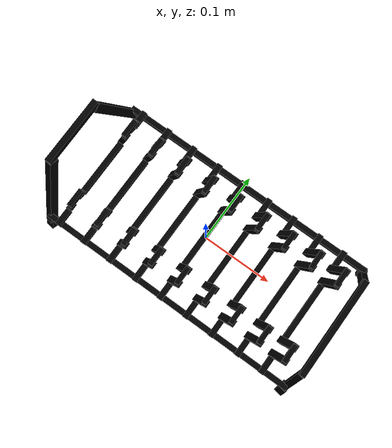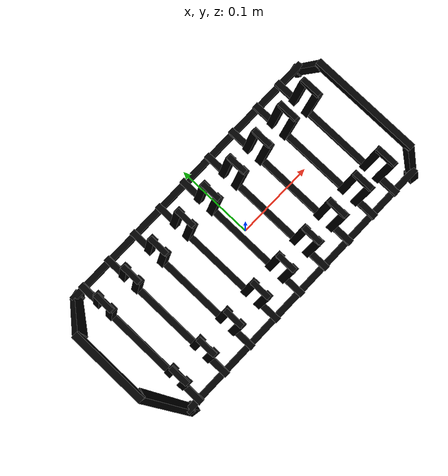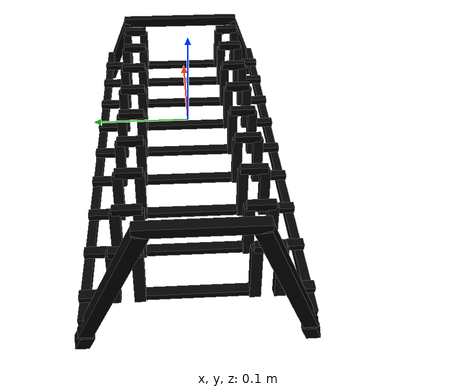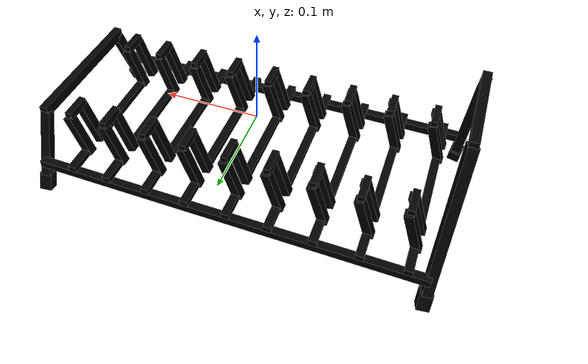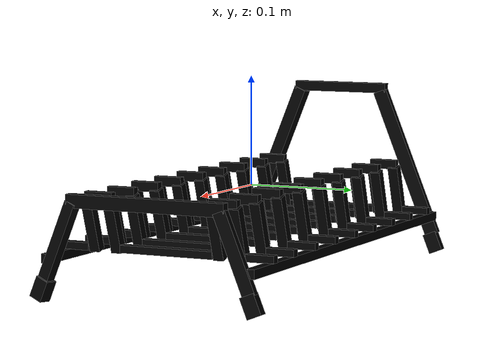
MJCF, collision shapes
<mujoco model="model">
  <option timestep="0.002" gravity="0.0 0.0 -9.81" />
  <compiler angle="radian" />
  <asset>
    <mesh file="visual/DishRack030.obj" name="DishRack030_vis" scale="0.8 0.8 0.8" />
    <texture file="visual/T_BC001.png" name="DishRack030_material" type="2d" />
    <material name="DishRack030_material" rgba="1 1 1 1.0" texture="DishRack030_material" shininess="0.4472135901451111" specular="0.3103448502657381" />
  </asset>
  <default>
    <default class="visual">
      <geom conaffinity="0" contype="0" group="2" type="mesh" density="0" />
    </default>
    <default class="collision">
      <geom group="3" rgba="1 1 1 0.25" density="0" solref="0.004 1" solimp="0.998 0.998 0.001" friction="0.5" />
    </default>
    <default class="spawn">
      <geom group="0" rgba="1 1 1 0.5" contype="0" conaffinity="0" />
      <site group="0" rgba="1 1 1 0.5" />
    </default>
    <default class="region">
      <geom group="1" conaffinity="0" contype="0" rgba="0 1 0 0" mass="0" />
    </default>
  </default>
  <worldbody>
    <body>
      <body name="object">
        <geom mesh="DishRack030_vis" type="mesh" class="visual" material="DishRack030_material" group="2" contype="0" conaffinity="0" density="0" mass="0.5" />
        <geom type="box" pos="-0.20302856 0.10015124 -0.073187224" size="0.00633350983262 0.0063881650567 0.00959458276632" quat="0.9781383872032166 0.19029957056045532 -0.01601365953683853 0.0823102816939354" class="collision" group="3" rgba="0 0 0 0" density="0" friction="0.5" solref="0.004 1" solimp="0.998 0.998 0.001" />
        <geom type="box" pos="-0.203377744 0.0709088 0.004020824" size="0.00478751286864 0.00641122236848 0.0749001324177" quat="0.9781383872032166 0.19029957056045532 -0.01601365953683853 0.0823102816939354" class="collision" group="3" rgba="0 0 0 0" density="0" friction="0.5" solref="0.004 1" solimp="0.998 0.998 0.001" />
        <geom type="box" pos="-0.203478216 0.000433736 0.076687624" size="0.00413835085928 0.0482719957829 0.00470789186657" quat="1.0 0.0 0.0 0.0" class="collision" group="3" rgba="0 0 0 0" density="0" friction="0.5" solref="0.004 1" solimp="0.998 0.998 0.001" />
        <geom type="box" pos="-1.3352e-05 0.097973272 -0.047118064" size="0.203974056243 0.00413835458458 0.00415748246014" quat="1.0 0.0 0.0 0.0" class="collision" group="3" rgba="0 0 0 0" density="0" friction="0.5" solref="0.004 1" solimp="0.998 0.998 0.001" />
        <geom type="box" pos="-0.18276036 0.089201648 -0.039936072" size="0.00413835085928 0.0131615892053 0.00329902209342" quat="1.0 0.0 0.0 0.0" class="collision" group="3" rgba="0 0 0 0" density="0" friction="0.5" solref="0.004 1" solimp="0.998 0.998 0.001" />
        <geom type="box" pos="-0.18276036 0.000391304 -0.040008736" size="0.00413835085928 0.0443565487862 0.00337168164551" quat="1.0 0.0 0.0 0.0" class="collision" group="3" rgba="0 0 0 0" density="0" friction="0.5" solref="0.004 1" solimp="0.998 0.998 0.001" />
        <geom type="box" pos="-0.17148676 0.060177736 0.005273304" size="0.00339950844646 0.0133820787072 0.00438583120704" quat="1.0 0.0 0.0 0.0" class="collision" group="3" rgba="0 0 0 0" density="0" friction="0.5" solref="0.004 1" solimp="0.998 0.998 0.001" />
        <geom type="box" pos="-0.177669168 0.071078832 -0.019919648" size="0.00430568195879 0.00487963669002 0.0244384646416" quat="0.9872633218765259 0.0 0.1590948849916458 0.0" class="collision" group="3" rgba="0 0 0 0" density="0" friction="0.5" solref="0.004 1" solimp="0.998 0.998 0.001" />
        <geom type="box" pos="-1.3352e-05 -0.09664712 -0.047118064" size="0.203974056243 0.00413835458458 0.00415748246014" quat="1.0 0.0 0.0 0.0" class="collision" group="3" rgba="0 0 0 0" density="0" friction="0.5" solref="0.004 1" solimp="0.998 0.998 0.001" />
        <geom type="box" pos="-0.177669168 0.049713016 -0.019919648" size="0.00430568195879 0.00487963669002 0.0244384646416" quat="0.9872633218765259 0.0 0.1590948849916458 0.0" class="collision" group="3" rgba="0 0 0 0" density="0" friction="0.5" solref="0.004 1" solimp="0.998 0.998 0.001" />
        <geom type="box" pos="-0.203377744 -0.07025748 0.004020824" size="0.00478751286864 0.00641122236848 0.0749001324177" quat="0.9781383872032166 -0.19029957056045532 -0.016013650223612785 -0.0823102742433548" class="collision" group="3" rgba="0 0 0 0" density="0" friction="0.5" solref="0.004 1" solimp="0.998 0.998 0.001" />
        <geom type="box" pos="-0.20302856 -0.099499928 -0.073187224" size="0.00633350983262 0.0063881650567 0.00959458276632" quat="0.9781383872032166 -0.19029955565929413 -0.016013650223612785 -0.0823102816939354" class="collision" group="3" rgba="0 0 0 0" density="0" friction="0.5" solref="0.004 1" solimp="0.998 0.998 0.001" />
        <geom type="box" pos="0.203668096 -0.099499928 -0.073187224" size="0.00633350983262 0.0063881650567 0.00959458276632" quat="0.9781383872032166 -0.19029955565929413 -0.016013650223612785 -0.0823102816939354" class="collision" group="3" rgba="0 0 0 0" density="0" friction="0.5" solref="0.004 1" solimp="0.998 0.998 0.001" />
        <geom type="box" pos="0.20331888 -0.083474624 -0.031531936" size="0.00460766814649 0.00535018630326 0.0369853049517" quat="0.9781383872032166 -0.19029957056045532 -0.016013650223612785 -0.0823102742433548" class="collision" group="3" rgba="0 0 0 0" density="0" friction="0.5" solref="0.004 1" solimp="0.998 0.998 0.001" />
        <geom type="box" pos="0.203218416 0.000674272 0.00440112" size="0.00413835085928 0.0749468147754 0.00588886328042" quat="1.0 0.0 0.0 0.0" class="collision" group="3" rgba="0 0 0 0" density="0" friction="0.5" solref="0.004 1" solimp="0.998 0.998 0.001" />
        <geom type="box" pos="0.20331888 0.08436648 -0.031531944" size="0.00464493408799 0.00557004772127 0.0368951171637" quat="0.9781383872032166 0.19029957056045532 -0.01601365953683853 0.0823102816939354" class="collision" group="3" rgba="0 0 0 0" density="0" friction="0.5" solref="0.004 1" solimp="0.998 0.998 0.001" />
        <geom type="box" pos="0.203668096 0.10015124 -0.073187224" size="0.00633350983262 0.0063881650567 0.00959458276632" quat="0.9781383872032166 0.19029957056045532 -0.01601365953683853 0.0823102816939354" class="collision" group="3" rgba="0 0 0 0" density="0" friction="0.5" solref="0.004 1" solimp="0.998 0.998 0.001" />
        <geom type="box" pos="-0.177669168 -0.048886232 -0.019919648" size="0.00430568195879 0.00487963669002 0.0244384646416" quat="0.9872633218765259 0.0 0.1590948849916458 0.0" class="collision" group="3" rgba="0 0 0 0" density="0" friction="0.5" solref="0.004 1" solimp="0.998 0.998 0.001" />
        <geom type="box" pos="-0.177669168 -0.070252048 -0.019919648" size="0.00430568195879 0.00487963669002 0.0244384646416" quat="0.9872633218765259 0.0 0.1590948849916458 0.0" class="collision" group="3" rgba="0 0 0 0" density="0" friction="0.5" solref="0.004 1" solimp="0.998 0.998 0.001" />
        <geom type="box" pos="-0.17148676 -0.059350944 0.005273304" size="0.00339950844646 0.0133820787072 0.00438583120704" quat="1.0 0.0 0.0 0.0" class="collision" group="3" rgba="0 0 0 0" density="0" friction="0.5" solref="0.004 1" solimp="0.998 0.998 0.001" />
        <geom type="box" pos="-0.18276036 -0.088374856 -0.039936072" size="0.00413835085928 0.0131615892053 0.00329902209342" quat="1.0 0.0 0.0 0.0" class="collision" group="3" rgba="0 0 0 0" density="0" friction="0.5" solref="0.004 1" solimp="0.998 0.998 0.001" />
        <geom type="box" pos="-0.138210296 -0.088374856 -0.039936072" size="0.00413835085928 0.0131615892053 0.00329902209342" quat="1.0 0.0 0.0 0.0" class="collision" group="3" rgba="0 0 0 0" density="0" friction="0.5" solref="0.004 1" solimp="0.998 0.998 0.001" />
        <geom type="box" pos="-0.126936696 -0.059350944 0.005273304" size="0.00339950844646 0.0133820787072 0.00438583120704" quat="1.0 0.0 0.0 0.0" class="collision" group="3" rgba="0 0 0 0" density="0" friction="0.5" solref="0.004 1" solimp="0.998 0.998 0.001" />
        <geom type="box" pos="-0.133119104 -0.070252048 -0.019919648" size="0.00430568195879 0.00487963669002 0.0244384646416" quat="0.9872633218765259 0.0 0.1590948849916458 0.0" class="collision" group="3" rgba="0 0 0 0" density="0" friction="0.5" solref="0.004 1" solimp="0.998 0.998 0.001" />
        <geom type="box" pos="-0.133119104 -0.048886232 -0.019919648" size="0.00430568195879 0.00487963669002 0.0244384646416" quat="0.9872633218765259 0.0 0.1590948849916458 0.0" class="collision" group="3" rgba="0 0 0 0" density="0" friction="0.5" solref="0.004 1" solimp="0.998 0.998 0.001" />
        <geom type="box" pos="-0.133119104 0.049713016 -0.019919648" size="0.00430568195879 0.00487963669002 0.0244384646416" quat="0.9872633218765259 0.0 0.1590948849916458 0.0" class="collision" group="3" rgba="0 0 0 0" density="0" friction="0.5" solref="0.004 1" solimp="0.998 0.998 0.001" />
        <geom type="box" pos="-0.133119104 0.071078832 -0.019919648" size="0.00430568195879 0.00487963669002 0.0244384646416" quat="0.9872633218765259 0.0 0.1590948849916458 0.0" class="collision" group="3" rgba="0 0 0 0" density="0" friction="0.5" solref="0.004 1" solimp="0.998 0.998 0.001" />
        <geom type="box" pos="-0.126936696 0.060177736 0.005273304" size="0.00339950844646 0.0133820787072 0.00438583120704" quat="1.0 0.0 0.0 0.0" class="collision" group="3" rgba="0 0 0 0" density="0" friction="0.5" solref="0.004 1" solimp="0.998 0.998 0.001" />
        <geom type="box" pos="-0.138210296 0.000391304 -0.040008736" size="0.00413835085928 0.0443565487862 0.00337168164551" quat="1.0 0.0 0.0 0.0" class="collision" group="3" rgba="0 0 0 0" density="0" friction="0.5" solref="0.004 1" solimp="0.998 0.998 0.001" />
        <geom type="box" pos="-0.138210296 0.089201648 -0.039936072" size="0.00413835085928 0.0131615892053 0.00329902209342" quat="1.0 0.0 0.0 0.0" class="collision" group="3" rgba="0 0 0 0" density="0" friction="0.5" solref="0.004 1" solimp="0.998 0.998 0.001" />
        <geom type="box" pos="-0.049090392 0.089201648 -0.039936072" size="0.00413835085928 0.0131615892053 0.00329902209342" quat="1.0 0.0 0.0 0.0" class="collision" group="3" rgba="0 0 0 0" density="0" friction="0.5" solref="0.004 1" solimp="0.998 0.998 0.001" />
        <geom type="box" pos="-0.0490904 0.000391304 -0.040008736" size="0.00413835085928 0.0443565487862 0.00337168164551" quat="1.0 0.0 0.0 0.0" class="collision" group="3" rgba="0 0 0 0" density="0" friction="0.5" solref="0.004 1" solimp="0.998 0.998 0.001" />
        <geom type="box" pos="-0.037816784 0.060177736 0.005273304" size="0.00339950844646 0.0133820787072 0.00438583120704" quat="1.0 0.0 0.0 0.0" class="collision" group="3" rgba="0 0 0 0" density="0" friction="0.5" solref="0.004 1" solimp="0.998 0.998 0.001" />
        <geom type="box" pos="-0.043999208 0.071078832 -0.019919648" size="0.00430568195879 0.00487963669002 0.0244384646416" quat="0.9872633218765259 0.0 0.1590948849916458 0.0" class="collision" group="3" rgba="0 0 0 0" density="0" friction="0.5" solref="0.004 1" solimp="0.998 0.998 0.001" />
        <geom type="box" pos="-0.043999208 0.049713016 -0.019919648" size="0.00430568195879 0.00487963669002 0.0244384646416" quat="0.9872633218765259 0.0 0.1590948849916458 0.0" class="collision" group="3" rgba="0 0 0 0" density="0" friction="0.5" solref="0.004 1" solimp="0.998 0.998 0.001" />
        <geom type="box" pos="-0.043999208 -0.048886232 -0.019919648" size="0.00430568195879 0.00487963669002 0.0244384646416" quat="0.9872633218765259 0.0 0.1590948849916458 0.0" class="collision" group="3" rgba="0 0 0 0" density="0" friction="0.5" solref="0.004 1" solimp="0.998 0.998 0.001" />
        <geom type="box" pos="-0.043999208 -0.070252048 -0.019919648" size="0.00430568195879 0.00487963669002 0.0244384646416" quat="0.9872633218765259 0.0 0.1590948849916458 0.0" class="collision" group="3" rgba="0 0 0 0" density="0" friction="0.5" solref="0.004 1" solimp="0.998 0.998 0.001" />
        <geom type="box" pos="-0.037816784 -0.059350944 0.005273304" size="0.00339950844646 0.0133820787072 0.00438583120704" quat="1.0 0.0 0.0 0.0" class="collision" group="3" rgba="0 0 0 0" density="0" friction="0.5" solref="0.004 1" solimp="0.998 0.998 0.001" />
        <geom type="box" pos="-0.049090392 -0.088374856 -0.039936072" size="0.00413835085928 0.0131615892053 0.00329902209342" quat="1.0 0.0 0.0 0.0" class="collision" group="3" rgba="0 0 0 0" density="0" friction="0.5" solref="0.004 1" solimp="0.998 0.998 0.001" />
        <geom type="box" pos="-0.093640456 -0.088374856 -0.039936072" size="0.00413835085928 0.0131615892053 0.00329902209342" quat="1.0 0.0 0.0 0.0" class="collision" group="3" rgba="0 0 0 0" density="0" friction="0.5" solref="0.004 1" solimp="0.998 0.998 0.001" />
        <geom type="box" pos="-0.082366848 -0.059350944 0.005273304" size="0.00339950844646 0.0133820787072 0.00438583120704" quat="1.0 0.0 0.0 0.0" class="collision" group="3" rgba="0 0 0 0" density="0" friction="0.5" solref="0.004 1" solimp="0.998 0.998 0.001" />
        <geom type="box" pos="-0.088549272 -0.070252048 -0.019919648" size="0.00430568195879 0.00487963669002 0.0244384646416" quat="0.9872633218765259 0.0 0.1590948849916458 0.0" class="collision" group="3" rgba="0 0 0 0" density="0" friction="0.5" solref="0.004 1" solimp="0.998 0.998 0.001" />
        <geom type="box" pos="-0.088549272 -0.048886232 -0.019919648" size="0.00430568195879 0.00487963669002 0.0244384646416" quat="0.9872633218765259 0.0 0.1590948849916458 0.0" class="collision" group="3" rgba="0 0 0 0" density="0" friction="0.5" solref="0.004 1" solimp="0.998 0.998 0.001" />
        <geom type="box" pos="-0.088549272 0.049713016 -0.019919648" size="0.00430568195879 0.00487963669002 0.0244384646416" quat="0.9872633218765259 0.0 0.1590948849916458 0.0" class="collision" group="3" rgba="0 0 0 0" density="0" friction="0.5" solref="0.004 1" solimp="0.998 0.998 0.001" />
        <geom type="box" pos="-0.088549272 0.071078832 -0.019919648" size="0.00430568195879 0.00487963669002 0.0244384646416" quat="0.9872633218765259 0.0 0.1590948849916458 0.0" class="collision" group="3" rgba="0 0 0 0" density="0" friction="0.5" solref="0.004 1" solimp="0.998 0.998 0.001" />
        <geom type="box" pos="-0.082366848 0.060177736 0.005273304" size="0.00339950844646 0.0133820787072 0.00438583120704" quat="1.0 0.0 0.0 0.0" class="collision" group="3" rgba="0 0 0 0" density="0" friction="0.5" solref="0.004 1" solimp="0.998 0.998 0.001" />
        <geom type="box" pos="-0.093640456 0.000391304 -0.040008736" size="0.00413835085928 0.0443565487862 0.00337168164551" quat="1.0 0.0 0.0 0.0" class="collision" group="3" rgba="0 0 0 0" density="0" friction="0.5" solref="0.004 1" solimp="0.998 0.998 0.001" />
        <geom type="box" pos="-0.093640456 0.089201648 -0.039936072" size="0.00413835085928 0.0131615892053 0.00329902209342" quat="1.0 0.0 0.0 0.0" class="collision" group="3" rgba="0 0 0 0" density="0" friction="0.5" solref="0.004 1" solimp="0.998 0.998 0.001" />
        <geom type="box" pos="0.037448528 0.089201648 -0.039936072" size="0.00413835085928 0.0131615892053 0.00329902209342" quat="1.0 0.0 0.0 0.0" class="collision" group="3" rgba="0 0 0 0" density="0" friction="0.5" solref="0.004 1" solimp="0.998 0.998 0.001" />
        <geom type="box" pos="0.037448528 0.000391304 -0.040008736" size="0.00413835085928 0.0443565487862 0.00337168164551" quat="1.0 0.0 0.0 0.0" class="collision" group="3" rgba="0 0 0 0" density="0" friction="0.5" solref="0.004 1" solimp="0.998 0.998 0.001" />
        <geom type="box" pos="0.048722136 0.060177736 0.005273304" size="0.00339950844646 0.0133820787072 0.00438583120704" quat="1.0 0.0 0.0 0.0" class="collision" group="3" rgba="0 0 0 0" density="0" friction="0.5" solref="0.004 1" solimp="0.998 0.998 0.001" />
        <geom type="box" pos="0.04253972 0.071078832 -0.019919648" size="0.00430568195879 0.00487963669002 0.0244384646416" quat="0.9872633218765259 0.0 0.1590948849916458 0.0" class="collision" group="3" rgba="0 0 0 0" density="0" friction="0.5" solref="0.004 1" solimp="0.998 0.998 0.001" />
        <geom type="box" pos="0.04253972 0.049713016 -0.019919648" size="0.00430568195879 0.00487963669002 0.0244384646416" quat="0.9872633218765259 0.0 0.1590948849916458 0.0" class="collision" group="3" rgba="0 0 0 0" density="0" friction="0.5" solref="0.004 1" solimp="0.998 0.998 0.001" />
        <geom type="box" pos="0.04253972 -0.048886232 -0.019919648" size="0.00430568195879 0.00487963669002 0.0244384646416" quat="0.9872633218765259 0.0 0.1590948849916458 0.0" class="collision" group="3" rgba="0 0 0 0" density="0" friction="0.5" solref="0.004 1" solimp="0.998 0.998 0.001" />
        <geom type="box" pos="0.04253972 -0.070252048 -0.019919648" size="0.00430568195879 0.00487963669002 0.0244384646416" quat="0.9872633218765259 0.0 0.1590948849916458 0.0" class="collision" group="3" rgba="0 0 0 0" density="0" friction="0.5" solref="0.004 1" solimp="0.998 0.998 0.001" />
        <geom type="box" pos="0.048722136 -0.059350944 0.005273304" size="0.00339950844646 0.0133820787072 0.00438583120704" quat="1.0 0.0 0.0 0.0" class="collision" group="3" rgba="0 0 0 0" density="0" friction="0.5" solref="0.004 1" solimp="0.998 0.998 0.001" />
        <geom type="box" pos="0.037448528 -0.088374856 -0.039936072" size="0.00413835085928 0.0131615892053 0.00329902209342" quat="1.0 0.0 0.0 0.0" class="collision" group="3" rgba="0 0 0 0" density="0" friction="0.5" solref="0.004 1" solimp="0.998 0.998 0.001" />
        <geom type="box" pos="-0.006274512 -0.088374856 -0.039936072" size="0.00413835085928 0.0131615892053 0.00329902209342" quat="1.0 0.0 0.0 0.0" class="collision" group="3" rgba="0 0 0 0" density="0" friction="0.5" solref="0.004 1" solimp="0.998 0.998 0.001" />
        <geom type="box" pos="0.004999096 -0.059350944 0.005273304" size="0.00339950844646 0.0133820787072 0.00438583120704" quat="1.0 0.0 0.0 0.0" class="collision" group="3" rgba="0 0 0 0" density="0" friction="0.5" solref="0.004 1" solimp="0.998 0.998 0.001" />
        <geom type="box" pos="-0.00118332 -0.070252048 -0.019919648" size="0.00430568195879 0.00487963669002 0.0244384646416" quat="0.9872633218765259 0.0 0.1590948849916458 0.0" class="collision" group="3" rgba="0 0 0 0" density="0" friction="0.5" solref="0.004 1" solimp="0.998 0.998 0.001" />
        <geom type="box" pos="-0.00118332 -0.048886232 -0.019919648" size="0.00430568195879 0.00487963669002 0.0244384646416" quat="0.9872633218765259 0.0 0.1590948849916458 0.0" class="collision" group="3" rgba="0 0 0 0" density="0" friction="0.5" solref="0.004 1" solimp="0.998 0.998 0.001" />
        <geom type="box" pos="-0.00118332 0.049713016 -0.019919648" size="0.00430568195879 0.00487963669002 0.0244384646416" quat="0.9872633218765259 0.0 0.1590948849916458 0.0" class="collision" group="3" rgba="0 0 0 0" density="0" friction="0.5" solref="0.004 1" solimp="0.998 0.998 0.001" />
        <geom type="box" pos="-0.00118332 0.071078832 -0.019919648" size="0.00430568195879 0.00487963669002 0.0244384646416" quat="0.9872633218765259 0.0 0.1590948849916458 0.0" class="collision" group="3" rgba="0 0 0 0" density="0" friction="0.5" solref="0.004 1" solimp="0.998 0.998 0.001" />
        <geom type="box" pos="0.004999096 0.060177736 0.005273304" size="0.00339950844646 0.0133820787072 0.00438583120704" quat="1.0 0.0 0.0 0.0" class="collision" group="3" rgba="0 0 0 0" density="0" friction="0.5" solref="0.004 1" solimp="0.998 0.998 0.001" />
        <geom type="box" pos="-0.006274512 0.000391304 -0.040008736" size="0.00413835085928 0.0443565487862 0.00337168164551" quat="1.0 0.0 0.0 0.0" class="collision" group="3" rgba="0 0 0 0" density="0" friction="0.5" solref="0.004 1" solimp="0.998 0.998 0.001" />
        <geom type="box" pos="-0.006274512 0.089201648 -0.039936072" size="0.00413835085928 0.0131615892053 0.00329902209342" quat="1.0 0.0 0.0 0.0" class="collision" group="3" rgba="0 0 0 0" density="0" friction="0.5" solref="0.004 1" solimp="0.998 0.998 0.001" />
        <geom type="box" pos="0.080395696 0.089201648 -0.039936072" size="0.00413835085928 0.0131615892053 0.00329902209342" quat="1.0 0.0 0.0 0.0" class="collision" group="3" rgba="0 0 0 0" density="0" friction="0.5" solref="0.004 1" solimp="0.998 0.998 0.001" />
        <geom type="box" pos="0.080395696 0.000391304 -0.040008736" size="0.00413835085928 0.0443565487862 0.00337168164551" quat="1.0 0.0 0.0 0.0" class="collision" group="3" rgba="0 0 0 0" density="0" friction="0.5" solref="0.004 1" solimp="0.998 0.998 0.001" />
        <geom type="box" pos="0.091669304 0.060177736 0.005273304" size="0.00339950844646 0.0133820787072 0.00438583120704" quat="1.0 0.0 0.0 0.0" class="collision" group="3" rgba="0 0 0 0" density="0" friction="0.5" solref="0.004 1" solimp="0.998 0.998 0.001" />
        <geom type="box" pos="0.08548688 0.071078832 -0.019919648" size="0.00430568195879 0.00487963669002 0.0244384646416" quat="0.9872633218765259 0.0 0.1590948849916458 0.0" class="collision" group="3" rgba="0 0 0 0" density="0" friction="0.5" solref="0.004 1" solimp="0.998 0.998 0.001" />
        <geom type="box" pos="0.08548688 0.049713016 -0.019919648" size="0.00430568195879 0.00487963669002 0.0244384646416" quat="0.9872633218765259 0.0 0.1590948849916458 0.0" class="collision" group="3" rgba="0 0 0 0" density="0" friction="0.5" solref="0.004 1" solimp="0.998 0.998 0.001" />
        <geom type="box" pos="0.08548688 -0.048886232 -0.019919648" size="0.00430568195879 0.00487963669002 0.0244384646416" quat="0.9872633218765259 0.0 0.1590948849916458 0.0" class="collision" group="3" rgba="0 0 0 0" density="0" friction="0.5" solref="0.004 1" solimp="0.998 0.998 0.001" />
        <geom type="box" pos="0.08548688 -0.070252048 -0.019919648" size="0.00430568195879 0.00487963669002 0.0244384646416" quat="0.9872633218765259 0.0 0.1590948849916458 0.0" class="collision" group="3" rgba="0 0 0 0" density="0" friction="0.5" solref="0.004 1" solimp="0.998 0.998 0.001" />
        <geom type="box" pos="0.091669304 -0.059350944 0.005273304" size="0.00339950844646 0.0133820787072 0.00438583120704" quat="1.0 0.0 0.0 0.0" class="collision" group="3" rgba="0 0 0 0" density="0" friction="0.5" solref="0.004 1" solimp="0.998 0.998 0.001" />
        <geom type="box" pos="0.080395696 -0.088374856 -0.039936072" size="0.00413835085928 0.0131615892053 0.00329902209342" quat="1.0 0.0 0.0 0.0" class="collision" group="3" rgba="0 0 0 0" density="0" friction="0.5" solref="0.004 1" solimp="0.998 0.998 0.001" />
        <geom type="box" pos="0.124178592 -0.088374856 -0.039936072" size="0.00413835085928 0.0131615892053 0.00329902209342" quat="1.0 0.0 0.0 0.0" class="collision" group="3" rgba="0 0 0 0" density="0" friction="0.5" solref="0.004 1" solimp="0.998 0.998 0.001" />
        <geom type="box" pos="0.135452184 -0.059350944 0.005273304" size="0.00339950844646 0.0133820787072 0.00438583120704" quat="1.0 0.0 0.0 0.0" class="collision" group="3" rgba="0 0 0 0" density="0" friction="0.5" solref="0.004 1" solimp="0.998 0.998 0.001" />
        <geom type="box" pos="0.129269776 -0.070252048 -0.019919648" size="0.00430568195879 0.00487963669002 0.0244384646416" quat="0.9872633218765259 0.0 0.1590948849916458 0.0" class="collision" group="3" rgba="0 0 0 0" density="0" friction="0.5" solref="0.004 1" solimp="0.998 0.998 0.001" />
        <geom type="box" pos="0.129269776 -0.048886232 -0.019919648" size="0.00430568195879 0.00487963669002 0.0244384646416" quat="0.9872633218765259 0.0 0.1590948849916458 0.0" class="collision" group="3" rgba="0 0 0 0" density="0" friction="0.5" solref="0.004 1" solimp="0.998 0.998 0.001" />
        <geom type="box" pos="0.129269776 0.049713016 -0.019919648" size="0.00430568195879 0.00487963669002 0.0244384646416" quat="0.9872633218765259 0.0 0.1590948849916458 0.0" class="collision" group="3" rgba="0 0 0 0" density="0" friction="0.5" solref="0.004 1" solimp="0.998 0.998 0.001" />
        <geom type="box" pos="0.129269776 0.071078832 -0.019919648" size="0.00430568195879 0.00487963669002 0.0244384646416" quat="0.9872633218765259 0.0 0.1590948849916458 0.0" class="collision" group="3" rgba="0 0 0 0" density="0" friction="0.5" solref="0.004 1" solimp="0.998 0.998 0.001" />
        <geom type="box" pos="0.135452184 0.060177736 0.005273304" size="0.00339950844646 0.0133820787072 0.00438583120704" quat="1.0 0.0 0.0 0.0" class="collision" group="3" rgba="0 0 0 0" density="0" friction="0.5" solref="0.004 1" solimp="0.998 0.998 0.001" />
        <geom type="box" pos="0.124178592 0.000391304 -0.040008736" size="0.00413835085928 0.0443565487862 0.00337168164551" quat="1.0 0.0 0.0 0.0" class="collision" group="3" rgba="0 0 0 0" density="0" friction="0.5" solref="0.004 1" solimp="0.998 0.998 0.001" />
        <geom type="box" pos="0.124178592 0.089201648 -0.039936072" size="0.00413835085928 0.0131615892053 0.00329902209342" quat="1.0 0.0 0.0 0.0" class="collision" group="3" rgba="0 0 0 0" density="0" friction="0.5" solref="0.004 1" solimp="0.998 0.998 0.001" />
        <geom type="box" pos="0.16388388 -0.088374856 -0.039936072" size="0.00413835085928 0.0131615892053 0.00329902209342" quat="1.0 0.0 0.0 0.0" class="collision" group="3" rgba="0 0 0 0" density="0" friction="0.5" solref="0.004 1" solimp="0.998 0.998 0.001" />
        <geom type="box" pos="0.175157472 -0.059350944 0.005273304" size="0.00339950844646 0.0133820787072 0.00438583120704" quat="1.0 0.0 0.0 0.0" class="collision" group="3" rgba="0 0 0 0" density="0" friction="0.5" solref="0.004 1" solimp="0.998 0.998 0.001" />
        <geom type="box" pos="0.168975064 -0.070252048 -0.019919648" size="0.00430568195879 0.00487963669002 0.0244384646416" quat="0.9872633218765259 0.0 0.1590948849916458 0.0" class="collision" group="3" rgba="0 0 0 0" density="0" friction="0.5" solref="0.004 1" solimp="0.998 0.998 0.001" />
        <geom type="box" pos="0.168975064 -0.048886232 -0.019919648" size="0.00430568195879 0.00487963669002 0.0244384646416" quat="0.9872633218765259 0.0 0.1590948849916458 0.0" class="collision" group="3" rgba="0 0 0 0" density="0" friction="0.5" solref="0.004 1" solimp="0.998 0.998 0.001" />
        <geom type="box" pos="0.168975064 0.049713016 -0.019919648" size="0.00430568195879 0.00487963669002 0.0244384646416" quat="0.9872633218765259 0.0 0.1590948849916458 0.0" class="collision" group="3" rgba="0 0 0 0" density="0" friction="0.5" solref="0.004 1" solimp="0.998 0.998 0.001" />
        <geom type="box" pos="0.168975064 0.071078832 -0.019919648" size="0.00430568195879 0.00487963669002 0.0244384646416" quat="0.9872633218765259 0.0 0.1590948849916458 0.0" class="collision" group="3" rgba="0 0 0 0" density="0" friction="0.5" solref="0.004 1" solimp="0.998 0.998 0.001" />
        <geom type="box" pos="0.175157472 0.060177736 0.005273304" size="0.00339950844646 0.0133820787072 0.00438583120704" quat="1.0 0.0 0.0 0.0" class="collision" group="3" rgba="0 0 0 0" density="0" friction="0.5" solref="0.004 1" solimp="0.998 0.998 0.001" />
        <geom type="box" pos="0.16388388 0.000391304 -0.040008736" size="0.00413835085928 0.0443565487862 0.00337168164551" quat="1.0 0.0 0.0 0.0" class="collision" group="3" rgba="0 0 0 0" density="0" friction="0.5" solref="0.004 1" solimp="0.998 0.998 0.001" />
        <geom type="box" pos="0.16388388 0.089201648 -0.039936072" size="0.00413835085928 0.0131615892053 0.00329902209342" quat="1.0 0.0 0.0 0.0" class="collision" group="3" rgba="0 0 0 0" density="0" friction="0.5" solref="0.004 1" solimp="0.998 0.998 0.001" />
        <geom class="region" name="reg_int_0" type="box" pos="-0.155536128 0.000668656 0.017276648" size="0.012475192 0.102242976 0.060413664" />
        <geom class="region" name="reg_int_1" type="box" pos="-0.110688576 0.000657516 0.017276656" size="0.012475184 0.102254116 0.060413672" />
        <geom class="region" name="reg_int_2" type="box" pos="-0.06653178 0.000657516 0.017276656" size="0.012475196 0.102254116 0.060413672" />
        <geom class="region" name="reg_int_3" type="box" pos="-0.022349896 0.000657516 0.017276656" size="0.012475192 0.102254116 0.060413672" />
        <geom class="region" name="reg_int_4" type="box" pos="0.020823868 0.000657516 0.017276656" size="0.012475196 0.102254116 0.060413672" />
        <geom class="region" name="reg_int_5" type="box" pos="0.064024196 0.000657516 0.017276656" size="0.012475196 0.102254116 0.060413672" />
        <geom class="region" name="reg_int_6" type="box" pos="0.10722452 0.000657516 0.017276656" size="0.012475192 0.102254116 0.060413672" />
        <geom class="region" name="reg_int_7" type="box" pos="0.149432956 0.000657516 0.017276656" size="0.010721668 0.102254116 0.060413672" />
        <geom class="region" name="reg_int_8" type="box" pos="0.188222924 0.000657516 0.017276656" size="0.0101903 0.102254116 0.060413672" />
        <geom size="0.210934504 0.1084806 0.0843738" pos="0 0 -0" name="reg_bbox" class="region" type="box" quat="1.0 0.0 0.0 0.0" />
      </body>
    </body>
  </worldbody>
  <actuator />
</mujoco>
